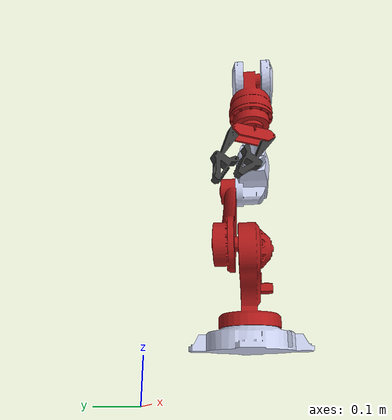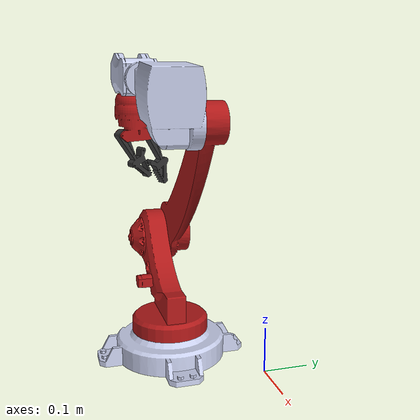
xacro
<?xml version="1.0"?>
<robot xmlns:xacro="http://www.ros.org/wiki/xacro" name="robotic_arm">
    <xacro:arg name="initial_positions_file" default="initial_positions.yaml" />

    <!-- Import robotic_arm urdf file -->
    <xacro:include filename="$(find robotic_arm)/description/robot.urdf.xacro" />

    <!-- Import control_xacro -->
    <xacro:include filename="robotic_arm.ros2_control.xacro" />

    <xacro:robotic_arm_ros2_control name="FakeSystem" initial_positions_file="$(arg initial_positions_file)"/>

</robot>

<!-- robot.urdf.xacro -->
<robot xmlns:xacro="http://www.ros.org/wiki/xacro"
name = "robotic_arm">

  <xacro:include filename='robot_core.xacro'/>

</robot>

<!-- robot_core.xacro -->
<robot xmlns:xacro="http://www.ros.org/wiki/xacro">
<!-- |    This document was autogenerated by xacro from /home/darkhorse/ros2_ws/src/robotic_arm/description/urdf/robotic_arm.urdf.xacro | -->
<!-- |    EDITING THIS FILE BY HAND IS NOT RECOMMENDED                                 | -->
  <link name = "world"/>

  <joint name = "base_joint" type = "fixed">
    <parent link = "world"/>
    <child link = "base_link"/>
    <origin rpy = "0 0 0" xyz = "0.0 0.0 0.0"/>
  </joint>

  <link name="base_link">
    <inertial>
      <origin rpy="0 0 0" xyz="0.073069 0.13264 0.2225"/>
      <mass value="1.5086"/>
      <inertia ixx="0.0043061" ixy="-2.3844E-07" ixz="-7.3077E-05" iyy="0.0080514" iyz="2.3844E-07" izz="0.0043061"/>
    </inertial>
    <visual>
      <origin rpy="0 0 0" xyz="0 0 0"/>
      <geometry>
        <mesh filename="package://robotic_arm/meshes/base_link.STL"/>
      </geometry>
      <material name="">
        <color rgba="0.79216 0.81961 0.93333 1"/>
      </material>
    </visual>
    <collision>
      <origin rpy="0 0 0" xyz="0 0 0"/>
      <geometry>
        <mesh filename="package://robotic_arm/meshes/base_link.STL"/>
      </geometry>
    </collision>
  </link>
  <link name="link_1">
    <inertial>
      <origin rpy="0 0 0" xyz="-0.057487 0.078405 0.0039341"/>
      <mass value="1.3333"/>
      <inertia ixx="0.0050949" ixy="0.0043173" ixz="0.00028916" iyy="0.00711" iyz="-0.00025095" izz="0.010704"/>
    </inertial>
    <visual>
      <origin rpy="0 0 0" xyz="0 0 0"/>
      <geometry>
        <mesh filename="package://robotic_arm/meshes/link_1.STL"/>
      </geometry>
      <material name="">
        <color rgba="0.69412 0.098039 0.098039 1"/>
      </material>
    </visual>
    <collision>
      <origin rpy="0 0 0" xyz="0 0 0"/>
      <geometry>
        <mesh filename="package://robotic_arm/meshes/link_1.STL"/>
      </geometry>
    </collision>
  </link>
  <joint name="joint_1" type="revolute">
    <origin rpy="1.5708 0 0" xyz="0.072332 -0.22324 0.16099"/>
    <parent link="base_link"/>
    <child link="link_1"/>
    <axis xyz="0 1 0"/>
    <limit effort="300" lower="0" upper="3.142" velocity="3"/>
  </joint>
  <link name="link_2">
    <inertial>
      <origin rpy="0 0 0" xyz="-0.14941 0.034282 0.0094769"/>
      <mass value="1.0447"/>
      <inertia ixx="0.00068419" ixy="-1.9061E-05" ixz="0.00023629" iyy="0.019048" iyz="2.1777E-05" izz="0.018654"/>
    </inertial>
    <visual>
      <origin rpy="0 0 0" xyz="0 0 0"/>
      <geometry>
        <mesh filename="package://robotic_arm/meshes/link_2.STL"/>
      </geometry>
      <material name="">
        <color rgba="0.69412 0.098039 0.098039 1"/>
      </material>
    </visual>
    <collision>
      <origin rpy="0 0 0" xyz="0 0 0"/>
      <geometry>
        <mesh filename="package://robotic_arm/meshes/link_2.STL"/>
      </geometry>
    </collision>
  </link>
  <joint name="joint_2" type="revolute">
    <origin rpy="-1.5708 0 -2.4026" xyz="-0.1461 0.15286 -0.0075"/>
    <parent link="link_1"/>
    <child link="link_2"/>
    <axis xyz="0 -1 0"/>
    <limit effort="200" lower="-1.57" upper="1.57" velocity="3"/>
  </joint>
  <link name="link_3">
    <inertial>
      <origin rpy="0 0 0" xyz="0.026725 -0.04057 -0.11374"/>
      <mass value="1.9528"/>
      <inertia ixx="0.010186" ixy="0.00012722" ixz="0.00011585" iyy="0.0098947" iyz="-0.0004026" izz="0.002441"/>
    </inertial>
    <visual>
      <origin rpy="0 0 0" xyz="0 0 0"/>
      <geometry>
        <mesh filename="package://robotic_arm/meshes/link_3.STL"/>
      </geometry>
      <material name="">
        <color rgba="0.79216 0.81961 0.93333 1"/>
      </material>
    </visual>
    <collision>
      <origin rpy="0 0 0" xyz="0 0 0"/>
      <geometry>
        <mesh filename="package://robotic_arm/meshes/link_3.STL"/>
      </geometry>
    </collision>
  </link>
  <joint name="joint_3" type="revolute">
    <origin rpy="0.7381 0 -1.5708" xyz="-0.35 0 0"/>
    <parent link="link_2"/>
    <child link="link_3"/>
    <axis xyz="-1 0 0"/>
    <limit effort="200" lower="0" upper="3.142" velocity="3"/>
  </joint>
  <link name="link_4">
    <inertial>
      <origin rpy="0 0 0" xyz="0.020252 0.0098033 0.066456"/>
      <mass value="0.41784"/>
      <inertia ixx="0.00044426" ixy="3.2023E-07" ixz="-1.7104E-19" iyy="0.00044991" iyz="2.2175E-19" izz="0.00028178"/>
    </inertial>
    <visual>
      <origin rpy="0 0 0" xyz="0 0 0"/>
      <geometry>
        <mesh filename="package://robotic_arm/meshes/link_4.STL"/>
      </geometry>
      <material name="">
        <color rgba="0.69412 0.098039 0.098039 1"/>
      </material>
    </visual>
    <collision>
      <origin rpy="0 0 0" xyz="0 0 0"/>
      <geometry>
        <mesh filename="package://robotic_arm/meshes/link_4.STL"/>
      </geometry>
    </collision>
  </link>
  <joint name="joint_4" type="revolute">
    <origin rpy="-1.5026 -0.44991 -0.029688" xyz="0 -0.045 -0.361"/>
    <parent link="link_3"/>
    <child link="link_4"/>
    <axis xyz="-0.90009 -0.4357 0"/>
    <limit effort="200" lower="0" upper="3.142" velocity="3"/>
  </joint>
  <link name="gripper_1">
    <inertial>
      <origin rpy="0 0 0" xyz="0.015716 -0.0097903 0.051506"/>
      <mass value="0.037969"/>
      <inertia ixx="4.3999E-05" ixy="-1.9125E-09" ixz="-9.3039E-06" iyy="4.8118E-05" iyz="-6.1689E-09" izz="6.21E-06"/>
    </inertial>
    <visual>
      <origin rpy="0 0 0" xyz="0 0 0"/>
      <geometry>
        <mesh filename="package://robotic_arm/meshes/gripper_1.STL"/>
      </geometry>
      <material name="">
        <color rgba="0.2 0.2 0.2 1"/>
      </material>
    </visual>
    <collision>
      <origin rpy="0 0 0" xyz="0 0 0"/>
      <geometry>
        <mesh filename="package://robotic_arm/meshes/gripper_1.STL"/>
      </geometry>
    </collision>
  </link>
  <joint name="joint_5" type="revolute">
    <origin rpy="0 0.40032 -3.1416" xyz="0.061613 0 0.12535"/>
    <parent link="link_4"/>
    <child link="gripper_1"/>
    <axis xyz="0 1 0"/>
    <limit effort="200" lower="-0.785" upper="0.785" velocity="3"/>
  </joint>
  <link name="gripper_2">
    <inertial>
      <origin rpy="0 0 0" xyz="0.015716 0.0098163 0.051506"/>
      <mass value="0.037969"/>
      <inertia ixx="4.3999E-05" ixy="-1.9125E-09" ixz="-9.3039E-06" iyy="4.8118E-05" iyz="-6.1689E-09" izz="6.21E-06"/>
    </inertial>
    <visual>
      <origin rpy="0 0 0" xyz="0 0 0"/>
      <geometry>
        <mesh filename="package://robotic_arm/meshes/gripper_2.STL"/>
      </geometry>
      <material name="">
        <color rgba="0.2 0.2 0.2 1"/>
      </material>
    </visual>
    <collision>
      <origin rpy="0 0 0" xyz="0 0 0"/>
      <geometry>
        <mesh filename="package://robotic_arm/meshes/gripper_2.STL"/>
      </geometry>
    </collision>
  </link>
  <joint name="joint_6" type="revolute">
    <origin rpy="0 -0.55041 0" xyz="-0.021108 0 0.12535"/>
    <parent link="link_4"/>
    <child link="gripper_2"/>
    <axis xyz="0 -1 0"/>
    <limit effort="200" lower="-0.785" upper="0.785" velocity="3"/>
  </joint>
</robot>
